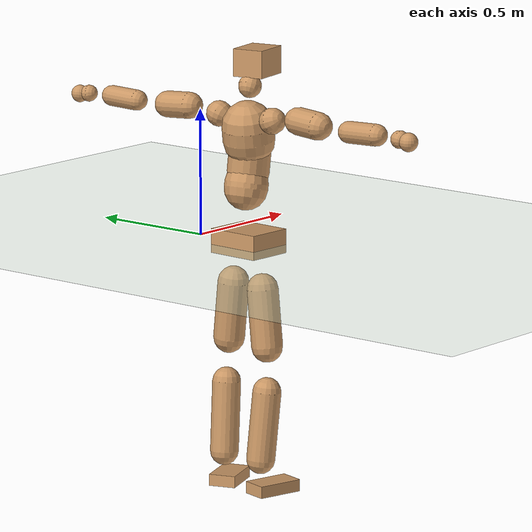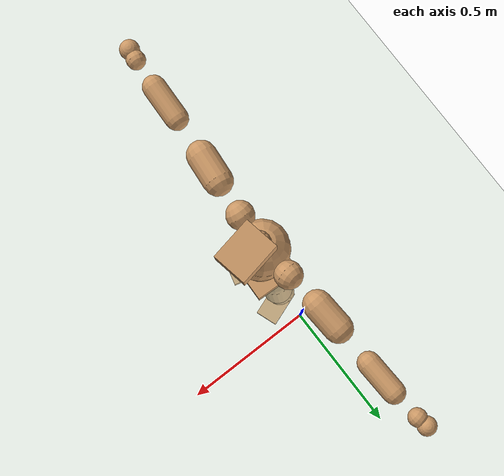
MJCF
<mujoco model="humanoid">
  <compiler coordinate="local" angle="radian"/>
  <default>
    <joint damping="0.0" armature="0.01" stiffness="0.0" limited="true"/>
    <geom conaffinity="1" condim="3" contype="7" margin="0.001" rgba="0.8 0.6 .4 1"/>
  </default>
  <asset>
    <texture type="skybox" builtin="gradient" rgb1=".4 .5 .6" rgb2="0 0 0" width="100" height="100"/>
    <texture builtin="flat" height="1278" mark="cross" markrgb="1 1 1" name="texgeom" random="0.01" rgb1="0.8 0.6 0.4" rgb2="0.8 0.6 0.4" type="cube" width="127"/>
    <texture builtin="checker" height="100" name="texplane" rgb1="0 0 0" rgb2="0.8 0.8 0.8" type="2d" width="100"/>
    <material name="MatPlane" reflectance="0.5" shininess="1" specular="1" texrepeat="60 60" texture="texplane"/>
    <material name="geom" texture="texgeom" texuniform="true"/>
  </asset>
  <worldbody>
    <light cutoff="100" diffuse="1 1 1" dir="-0 0 -1.3" directional="true" exponent="1" pos="0 0 1.3" specular=".1 .1 .1"/>
    <geom conaffinity="1" condim="3" name="floor" pos="0 0 0" rgba="0.8 0.9 0.8 1" size="100 100 .2" type="plane" material="MatPlane"/>
    <body name="Pelvis" pos="0.0013 -0.252 0.021">
      <freejoint name="Pelvis"/>
      <geom type="box" contype="1" conaffinity="1" density="5359.374952" pos="-0.0112 0.0004 -0.0084" size="0.094 0.1101 0.0478" quat="0.9998 0.0000 0.0000 -0.0183" name="Pelvis"/>
      <body name="L_Hip" pos="-0.0188 0.0611 -0.0885">
        <joint name="L_Hip_x" type="hinge" pos="0 0 0" axis="1 0 0" stiffness="1600" damping="160" armature="0.02" range="-180.0000 180.0000"/>
        <joint name="L_Hip_y" type="hinge" pos="0 0 0" axis="0 1 0" stiffness="1600" damping="160" armature="0.02" range="-180.0000 180.0000"/>
        <joint name="L_Hip_z" type="hinge" pos="0 0 0" axis="0 0 1" stiffness="1600" damping="160" armature="0.02" range="-180.0000 180.0000"/>
        <geom type="capsule" contype="1" conaffinity="1" density="2040.816327" size="0.0617" fromto="0.0009 0.0099 -0.0912 0.0033 0.0346 -0.3182" name="L_Hip"/>
        <body name="L_Knee" pos="0.0043 0.0445 -0.4094">
          <joint name="L_Knee_x" type="hinge" pos="0 0 0" axis="1 0 0" stiffness="1600" damping="160" armature="0.02" range="-180.0000 180.0000"/>
          <joint name="L_Knee_y" type="hinge" pos="0 0 0" axis="0 1 0" stiffness="1600" damping="160" armature="0.02" range="-180.0000 180.0000"/>
          <joint name="L_Knee_z" type="hinge" pos="0 0 0" axis="0 0 1" stiffness="1600" damping="160" armature="0.02" range="-180.0000 180.0000"/>
          <geom type="capsule" contype="1" conaffinity="1" density="1234.567901" size="0.0559" fromto="-0.0078 -0.0029 -0.0855 -0.0329 -0.0124 -0.3625" name="L_Knee"/>
          <body name="L_Ankle" pos="-0.0407 -0.0154 -0.448">
            <joint name="L_Ankle_x" type="hinge" pos="0 0 0" axis="1 0 0" stiffness="1600" damping="160" armature="0.02" range="-180.0000 180.0000"/>
            <joint name="L_Ankle_y" type="hinge" pos="0 0 0" axis="0 1 0" stiffness="1600" damping="160" armature="0.02" range="-180.0000 180.0000"/>
            <joint name="L_Ankle_z" type="hinge" pos="0 0 0" axis="0 0 1" stiffness="1600" damping="160" armature="0.02" range="-180.0000 180.0000"/>
            <geom type="box" contype="1" conaffinity="1" density="1000.000005" pos="0.0621 0.0223 -0.0314" size="0.0873 0.0536 0.0231" quat="0.9851 0.0000 0.0000 0.1719" name="L_Ankle"/>
            <body name="L_Toe" pos="0.1241 0.0447 -0.0627">
              <joint name="L_Toe_x" type="hinge" pos="0 0 0" axis="1 0 0" stiffness="1000" damping="100" armature="0.02" range="-180.0000 180.0000"/>
              <joint name="L_Toe_y" type="hinge" pos="0 0 0" axis="0 1 0" stiffness="1000" damping="100" armature="0.02" range="-180.0000 180.0000"/>
              <joint name="L_Toe_z" type="hinge" pos="0 0 0" axis="0 0 1" stiffness="1000" damping="100" armature="0.02" range="-180.0000 180.0000"/>
              <geom type="box" contype="1" conaffinity="1" density="7850766.374553" pos="0.0000 0.0000 0.0322" size="0.0011 0.0025 0.0012" quat="0.9843 0.0000 0.0000 0.1763" name="L_Toe"/>
            </body>
          </body>
        </body>
      </body>
      <body name="R_Hip" pos="-0.0142 -0.0635 -0.0981">
        <joint name="R_Hip_x" type="hinge" pos="0 0 0" axis="1 0 0" stiffness="1600" damping="160" armature="0.02" range="-180.0000 180.0000"/>
        <joint name="R_Hip_y" type="hinge" pos="0 0 0" axis="0 1 0" stiffness="1600" damping="160" armature="0.02" range="-180.0000 180.0000"/>
        <joint name="R_Hip_z" type="hinge" pos="0 0 0" axis="0 0 1" stiffness="1600" damping="160" armature="0.02" range="-180.0000 180.0000"/>
        <geom type="capsule" contype="1" conaffinity="1" density="2040.816327" size="0.0615" fromto="-0.0018 -0.0108 -0.0909 -0.0063 -0.0377 -0.3162" name="R_Hip"/>
        <body name="R_Knee" pos="-0.0081 -0.0485 -0.4071">
          <joint name="R_Knee_x" type="hinge" pos="0 0 0" axis="1 0 0" stiffness="1600" damping="160" armature="0.02" range="-180.0000 180.0000"/>
          <joint name="R_Knee_y" type="hinge" pos="0 0 0" axis="0 1 0" stiffness="1600" damping="160" armature="0.02" range="-180.0000 180.0000"/>
          <joint name="R_Knee_z" type="hinge" pos="0 0 0" axis="0 0 1" stiffness="1600" damping="160" armature="0.02" range="-180.0000 180.0000"/>
          <geom type="capsule" contype="1" conaffinity="1" density="1234.567901" size="0.0562" fromto="-0.0073 0.0039 -0.0858 -0.0302 0.0161 -0.3568" name="R_Knee"/>
          <body name="R_Ankle" pos="-0.0374 0.02 -0.4425">
            <joint name="R_Ankle_x" type="hinge" pos="0 0 0" axis="1 0 0" stiffness="1600" damping="160" armature="0.02" range="-180.0000 180.0000"/>
            <joint name="R_Ankle_y" type="hinge" pos="0 0 0" axis="0 1 0" stiffness="1600" damping="160" armature="0.02" range="-180.0000 180.0000"/>
            <joint name="R_Ankle_z" type="hinge" pos="0 0 0" axis="0 0 1" stiffness="1600" damping="160" armature="0.02" range="-180.0000 180.0000"/>
            <geom type="box" contype="1" conaffinity="1" density="1000.00002" pos="0.0668 -0.0170 -0.0329" size="0.0931 0.0516 0.0237" quat="0.9922 0.0000 0.0000 -0.1245" name="R_Ankle"/>
            <body name="R_Toe" pos="0.1335 -0.0341 -0.0658">
              <joint name="R_Toe_x" type="hinge" pos="0 0 0" axis="1 0 0" stiffness="1000" damping="100" armature="0.02" range="-180.0000 180.0000"/>
              <joint name="R_Toe_y" type="hinge" pos="0 0 0" axis="0 1 0" stiffness="1000" damping="100" armature="0.02" range="-180.0000 180.0000"/>
              <joint name="R_Toe_z" type="hinge" pos="0 0 0" axis="0 0 1" stiffness="1000" damping="100" armature="0.02" range="-180.0000 180.0000"/>
              <geom type="box" contype="1" conaffinity="1" density="7900486.396177" pos="0.0000 0.0000 0.0343" size="0.0011 0.0025 0.0013" quat="0.9933 0.0000 0.0000 -0.1159" name="R_Toe"/>
            </body>
          </body>
        </body>
      </body>
      <body name="Torso" pos="-0.0342 0.0049 0.1359">
        <joint name="Torso_x" type="hinge" pos="0 0 0" axis="1 0 0" stiffness="2000" damping="200" armature="0.02" range="-180.0000 180.0000"/>
        <joint name="Torso_y" type="hinge" pos="0 0 0" axis="0 1 0" stiffness="2000" damping="200" armature="0.02" range="-180.0000 180.0000"/>
        <joint name="Torso_z" type="hinge" pos="0 0 0" axis="0 0 1" stiffness="2000" damping="200" armature="0.02" range="-180.0000 180.0000"/>
        <geom type="capsule" contype="1" conaffinity="1" density="2040.816327" size="0.0858" fromto="0.0195 0.0027 0.0835 0.0147 0.0021 0.0632" name="Torso"/>
        <body name="Spine" pos="0.0342 0.0048 0.1467">
          <joint name="Spine_x" type="hinge" pos="0 0 0" axis="1 0 0" stiffness="2000" damping="200" armature="0.02" range="-180.0000 180.0000"/>
          <joint name="Spine_y" type="hinge" pos="0 0 0" axis="0 1 0" stiffness="2000" damping="200" armature="0.02" range="-180.0000 180.0000"/>
          <joint name="Spine_z" type="hinge" pos="0 0 0" axis="0 0 1" stiffness="2000" damping="200" armature="0.02" range="-180.0000 180.0000"/>
          <geom type="capsule" contype="1" conaffinity="1" density="2040.816327" size="0.0827" fromto="0.0046 -0.0056 0.0824 -0.0013 0.0016 -0.0237" name="Spine"/>
          <body name="Chest" pos="0.0033 -0.004 0.0587">
            <joint name="Chest_x" type="hinge" pos="0 0 0" axis="1 0 0" stiffness="2000" damping="200" armature="0.02" range="-180.0000 180.0000"/>
            <joint name="Chest_y" type="hinge" pos="0 0 0" axis="0 1 0" stiffness="2000" damping="200" armature="0.02" range="-180.0000 180.0000"/>
            <joint name="Chest_z" type="hinge" pos="0 0 0" axis="0 0 1" stiffness="2000" damping="200" armature="0.02" range="-180.0000 180.0000"/>
            <geom type="capsule" contype="1" conaffinity="1" density="2040.816327" size="0.1023" fromto="-0.0193 -0.0055 0.1003 -0.0094 -0.0027 0.0488" name="Chest"/>
            <body name="Neck" pos="-0.0362 -0.0121 0.2141">
              <joint name="Neck_x" type="hinge" pos="0 0 0" axis="1 0 0" stiffness="1000" damping="100" armature="0.02" range="-180.0000 180.0000"/>
              <joint name="Neck_y" type="hinge" pos="0 0 0" axis="0 1 0" stiffness="1000" damping="100" armature="0.02" range="-180.0000 180.0000"/>
              <joint name="Neck_z" type="hinge" pos="0 0 0" axis="0 0 1" stiffness="1000" damping="100" armature="0.02" range="-180.0000 180.0000"/>
              <geom type="capsule" contype="1" conaffinity="1" density="1000" size="0.0451" fromto="0.0263 0.0042 0.0433 0.0273 0.0044 0.0450" name="Neck"/>
              <body name="Head" pos="0.0536 0.0085 0.0883">
                <joint name="Head_x" type="hinge" pos="0 0 0" axis="1 0 0" stiffness="1000" damping="100" armature="0.02" range="-180.0000 180.0000"/>
                <joint name="Head_y" type="hinge" pos="0 0 0" axis="0 1 0" stiffness="1000" damping="100" armature="0.02" range="-180.0000 180.0000"/>
                <joint name="Head_z" type="hinge" pos="0 0 0" axis="0 0 1" stiffness="1000" damping="100" armature="0.02" range="-180.0000 180.0000"/>
                <geom type="box" contype="1" conaffinity="1" density="2250.000047" pos="0.0278 0.0053 0.0452" size="0.0777 0.0626 0.0539" quat="0.9956 0.0000 0.0000 0.0935" name="Head"/>
              </body>
            </body>
            <body name="L_Thorax" pos="-0.0244 0.0691 0.1166">
              <joint name="L_Thorax_x" type="hinge" pos="0 0 0" axis="1 0 0" stiffness="1000" damping="100" armature="0.02" range="-180.0000 180.0000"/>
              <joint name="L_Thorax_y" type="hinge" pos="0 0 0" axis="0 1 0" stiffness="1000" damping="100" armature="0.02" range="-180.0000 180.0000"/>
              <joint name="L_Thorax_z" type="hinge" pos="0 0 0" axis="0 0 1" stiffness="1000" damping="100" armature="0.02" range="-180.0000 180.0000"/>
              <geom type="capsule" contype="1" conaffinity="1" density="1000" size="0.0506" fromto="-0.0086 0.0560 0.0215 -0.0089 0.0578 0.0222" name="L_Thorax"/>
              <body name="L_Shoulder" pos="-0.0175 0.1138 0.0438">
                <joint name="L_Shoulder_x" type="hinge" pos="0 0 0" axis="1 0 0" stiffness="1000" damping="100" armature="0.02" range="-720.0000 720.0000"/>
                <joint name="L_Shoulder_y" type="hinge" pos="0 0 0" axis="0 1 0" stiffness="1000" damping="100" armature="0.02" range="-720.0000 720.0000"/>
                <joint name="L_Shoulder_z" type="hinge" pos="0 0 0" axis="0 0 1" stiffness="1000" damping="100" armature="0.02" range="-720.0000 720.0000"/>
                <geom type="capsule" contype="1" conaffinity="1" density="1000" size="0.0521" fromto="-0.0055 0.0818 -0.0046 -0.0125 0.1870 -0.0105" name="L_Shoulder"/>
                <body name="L_Elbow" pos="-0.018 0.2688 -0.0151">
                  <joint name="L_Elbow_x" type="hinge" pos="0 0 0" axis="1 0 0" stiffness="1000" damping="100" armature="0.02" range="-720.0000 720.0000"/>
                  <joint name="L_Elbow_y" type="hinge" pos="0 0 0" axis="0 1 0" stiffness="1000" damping="100" armature="0.02" range="-720.0000 720.0000"/>
                  <joint name="L_Elbow_z" type="hinge" pos="0 0 0" axis="0 0 1" stiffness="1000" damping="100" armature="0.02" range="-720.0000 720.0000"/>
                  <geom type="capsule" contype="1" conaffinity="1" density="1000" size="0.0406" fromto="-0.0031 0.0705 0.0028 -0.0087 0.1968 0.0078" name="L_Elbow"/>
                  <body name="L_Wrist" pos="-0.0118 0.2673 0.0105">
                    <joint name="L_Wrist_x" type="hinge" pos="0 0 0" axis="1 0 0" stiffness="600" damping="60" armature="0.02" range="-180.0000 180.0000"/>
                    <joint name="L_Wrist_y" type="hinge" pos="0 0 0" axis="0 1 0" stiffness="600" damping="60" armature="0.02" range="-180.0000 180.0000"/>
                    <joint name="L_Wrist_z" type="hinge" pos="0 0 0" axis="0 0 1" stiffness="600" damping="60" armature="0.02" range="-180.0000 180.0000"/>
                    <geom type="capsule" contype="1" conaffinity="1" density="1000" size="0.033" fromto="-0.0074 0.0407 -0.0048 -0.0078 0.0426 -0.0050" name="L_Wrist"/>
                    <body name="L_Hand" pos="-0.0152 0.0833 -0.0098">
                      <joint name="L_Hand_x" type="hinge" pos="0 0 0" axis="1 0 0" stiffness="600" damping="60" armature="0.02" range="-180.0000 180.0000"/>
                      <joint name="L_Hand_y" type="hinge" pos="0 0 0" axis="0 1 0" stiffness="600" damping="60" armature="0.02" range="-180.0000 180.0000"/>
                      <joint name="L_Hand_z" type="hinge" pos="0 0 0" axis="0 0 1" stiffness="600" damping="60" armature="0.02" range="-180.0000 180.0000"/>
                      <geom type="sphere" contype="1" conaffinity="1" density="1000" size="0.0343" pos="0.0000 0.0000 0.0000" name="L_Hand"/>
                    </body>
                  </body>
                </body>
              </body>
            </body>
            <body name="R_Thorax" pos="-0.0253 -0.0814 0.1166">
              <joint name="R_Thorax_x" type="hinge" pos="0 0 0" axis="1 0 0" stiffness="1000" damping="100" armature="0.02" range="-180.0000 180.0000"/>
              <joint name="R_Thorax_y" type="hinge" pos="0 0 0" axis="0 1 0" stiffness="1000" damping="100" armature="0.02" range="-180.0000 180.0000"/>
              <joint name="R_Thorax_z" type="hinge" pos="0 0 0" axis="0 0 1" stiffness="1000" damping="100" armature="0.02" range="-180.0000 180.0000"/>
              <geom type="capsule" contype="1" conaffinity="1" density="1000" size="0.0514" fromto="-0.0031 -0.0530 0.0221 -0.0032 -0.0549 0.0228" name="R_Thorax"/>
              <body name="R_Shoulder" pos="-0.0062 -0.1079 0.0449">
                <joint name="R_Shoulder_x" type="hinge" pos="0 0 0" axis="1 0 0" stiffness="1000" damping="100" armature="0.02" range="-720.0000 720.0000"/>
                <joint name="R_Shoulder_y" type="hinge" pos="0 0 0" axis="0 1 0" stiffness="1000" damping="100" armature="0.02" range="-720.0000 720.0000"/>
                <joint name="R_Shoulder_z" type="hinge" pos="0 0 0" axis="0 0 1" stiffness="1000" damping="100" armature="0.02" range="-720.0000 720.0000"/>
                <geom type="capsule" contype="1" conaffinity="1" density="1000" size="0.0539" fromto="-0.0078 -0.0834 -0.0046 -0.0176 -0.1885 -0.0105" name="R_Shoulder"/>
                <body name="R_Elbow" pos="-0.0254 -0.272 -0.0151">
                  <joint name="R_Elbow_x" type="hinge" pos="0 0 0" axis="1 0 0" stiffness="1000" damping="100" armature="0.02" range="-720.0000 720.0000"/>
                  <joint name="R_Elbow_y" type="hinge" pos="0 0 0" axis="0 1 0" stiffness="1000" damping="100" armature="0.02" range="-720.0000 720.0000"/>
                  <joint name="R_Elbow_z" type="hinge" pos="0 0 0" axis="0 0 1" stiffness="1000" damping="100" armature="0.02" range="-720.0000 720.0000"/>
                  <geom type="capsule" contype="1" conaffinity="1" density="1000" size="0.0422" fromto="-0.0028 -0.0721 0.0030 -0.0080 -0.2066 0.0085" name="R_Elbow"/>
                  <body name="R_Wrist" pos="-0.0108 -0.2786 0.0115">
                    <joint name="R_Wrist_x" type="hinge" pos="0 0 0" axis="1 0 0" stiffness="600" damping="60" armature="0.02" range="-180.0000 180.0000"/>
                    <joint name="R_Wrist_y" type="hinge" pos="0 0 0" axis="0 1 0" stiffness="600" damping="60" armature="0.02" range="-180.0000 180.0000"/>
                    <joint name="R_Wrist_z" type="hinge" pos="0 0 0" axis="0 0 1" stiffness="600" damping="60" armature="0.02" range="-180.0000 180.0000"/>
                    <geom type="capsule" contype="1" conaffinity="1" density="1000" size="0.0347" fromto="-0.0048 -0.0431 -0.0040 -0.0050 -0.0450 -0.0042" name="R_Wrist"/>
                    <body name="R_Hand" pos="-0.0098 -0.0881 -0.0083">
                      <joint name="R_Hand_x" type="hinge" pos="0 0 0" axis="1 0 0" stiffness="600" damping="60" armature="0.02" range="-180.0000 180.0000"/>
                      <joint name="R_Hand_y" type="hinge" pos="0 0 0" axis="0 1 0" stiffness="600" damping="60" armature="0.02" range="-180.0000 180.0000"/>
                      <joint name="R_Hand_z" type="hinge" pos="0 0 0" axis="0 0 1" stiffness="600" damping="60" armature="0.02" range="-180.0000 180.0000"/>
                      <geom type="sphere" contype="1" conaffinity="1" density="1000" size="0.0359" pos="0.0000 0.0000 0.0000" name="R_Hand"/>
                    </body>
                  </body>
                </body>
              </body>
            </body>
          </body>
        </body>
      </body>
    </body>
  </worldbody>
  <actuator>
    <motor name="L_Hip_x" joint="L_Hip_x" gear="500"/>
    <motor name="L_Hip_y" joint="L_Hip_y" gear="500"/>
    <motor name="L_Hip_z" joint="L_Hip_z" gear="500"/>
    <motor name="L_Knee_x" joint="L_Knee_x" gear="500"/>
    <motor name="L_Knee_y" joint="L_Knee_y" gear="500"/>
    <motor name="L_Knee_z" joint="L_Knee_z" gear="500"/>
    <motor name="L_Ankle_x" joint="L_Ankle_x" gear="500"/>
    <motor name="L_Ankle_y" joint="L_Ankle_y" gear="500"/>
    <motor name="L_Ankle_z" joint="L_Ankle_z" gear="500"/>
    <motor name="L_Toe_x" joint="L_Toe_x" gear="500"/>
    <motor name="L_Toe_y" joint="L_Toe_y" gear="500"/>
    <motor name="L_Toe_z" joint="L_Toe_z" gear="500"/>
    <motor name="R_Hip_x" joint="R_Hip_x" gear="500"/>
    <motor name="R_Hip_y" joint="R_Hip_y" gear="500"/>
    <motor name="R_Hip_z" joint="R_Hip_z" gear="500"/>
    <motor name="R_Knee_x" joint="R_Knee_x" gear="500"/>
    <motor name="R_Knee_y" joint="R_Knee_y" gear="500"/>
    <motor name="R_Knee_z" joint="R_Knee_z" gear="500"/>
    <motor name="R_Ankle_x" joint="R_Ankle_x" gear="500"/>
    <motor name="R_Ankle_y" joint="R_Ankle_y" gear="500"/>
    <motor name="R_Ankle_z" joint="R_Ankle_z" gear="500"/>
    <motor name="R_Toe_x" joint="R_Toe_x" gear="500"/>
    <motor name="R_Toe_y" joint="R_Toe_y" gear="500"/>
    <motor name="R_Toe_z" joint="R_Toe_z" gear="500"/>
    <motor name="Torso_x" joint="Torso_x" gear="500"/>
    <motor name="Torso_y" joint="Torso_y" gear="500"/>
    <motor name="Torso_z" joint="Torso_z" gear="500"/>
    <motor name="Spine_x" joint="Spine_x" gear="500"/>
    <motor name="Spine_y" joint="Spine_y" gear="500"/>
    <motor name="Spine_z" joint="Spine_z" gear="500"/>
    <motor name="Chest_x" joint="Chest_x" gear="500"/>
    <motor name="Chest_y" joint="Chest_y" gear="500"/>
    <motor name="Chest_z" joint="Chest_z" gear="500"/>
    <motor name="Neck_x" joint="Neck_x" gear="500"/>
    <motor name="Neck_y" joint="Neck_y" gear="500"/>
    <motor name="Neck_z" joint="Neck_z" gear="500"/>
    <motor name="Head_x" joint="Head_x" gear="500"/>
    <motor name="Head_y" joint="Head_y" gear="500"/>
    <motor name="Head_z" joint="Head_z" gear="500"/>
    <motor name="L_Thorax_x" joint="L_Thorax_x" gear="500"/>
    <motor name="L_Thorax_y" joint="L_Thorax_y" gear="500"/>
    <motor name="L_Thorax_z" joint="L_Thorax_z" gear="500"/>
    <motor name="L_Shoulder_x" joint="L_Shoulder_x" gear="500"/>
    <motor name="L_Shoulder_y" joint="L_Shoulder_y" gear="500"/>
    <motor name="L_Shoulder_z" joint="L_Shoulder_z" gear="500"/>
    <motor name="L_Elbow_x" joint="L_Elbow_x" gear="500"/>
    <motor name="L_Elbow_y" joint="L_Elbow_y" gear="500"/>
    <motor name="L_Elbow_z" joint="L_Elbow_z" gear="500"/>
    <motor name="L_Wrist_x" joint="L_Wrist_x" gear="500"/>
    <motor name="L_Wrist_y" joint="L_Wrist_y" gear="500"/>
    <motor name="L_Wrist_z" joint="L_Wrist_z" gear="500"/>
    <motor name="L_Hand_x" joint="L_Hand_x" gear="500"/>
    <motor name="L_Hand_y" joint="L_Hand_y" gear="500"/>
    <motor name="L_Hand_z" joint="L_Hand_z" gear="500"/>
    <motor name="R_Thorax_x" joint="R_Thorax_x" gear="500"/>
    <motor name="R_Thorax_y" joint="R_Thorax_y" gear="500"/>
    <motor name="R_Thorax_z" joint="R_Thorax_z" gear="500"/>
    <motor name="R_Shoulder_x" joint="R_Shoulder_x" gear="500"/>
    <motor name="R_Shoulder_y" joint="R_Shoulder_y" gear="500"/>
    <motor name="R_Shoulder_z" joint="R_Shoulder_z" gear="500"/>
    <motor name="R_Elbow_x" joint="R_Elbow_x" gear="500"/>
    <motor name="R_Elbow_y" joint="R_Elbow_y" gear="500"/>
    <motor name="R_Elbow_z" joint="R_Elbow_z" gear="500"/>
    <motor name="R_Wrist_x" joint="R_Wrist_x" gear="500"/>
    <motor name="R_Wrist_y" joint="R_Wrist_y" gear="500"/>
    <motor name="R_Wrist_z" joint="R_Wrist_z" gear="500"/>
    <motor name="R_Hand_x" joint="R_Hand_x" gear="500"/>
    <motor name="R_Hand_y" joint="R_Hand_y" gear="500"/>
    <motor name="R_Hand_z" joint="R_Hand_z" gear="500"/>
  </actuator>
  <contact>
    <exclude body1="Torso" body2="Chest"/>
    <exclude body1="Head" body2="Chest"/>
    <exclude body1="R_Knee" body2="R_Toe"/>
    <exclude body1="R_Knee" body2="L_Ankle"/>
    <exclude body1="R_Knee" body2="L_Toe"/>
    <exclude body1="L_Knee" body2="L_Toe"/>
    <exclude body1="L_Knee" body2="R_Ankle"/>
    <exclude body1="L_Knee" body2="R_Toe"/>
    <exclude body1="L_Shoulder" body2="Chest"/>
    <exclude body1="R_Shoulder" body2="Chest"/>
  </contact>
  <sensor/>
  <size njmax="700" nconmax="700"/>
</mujoco>
